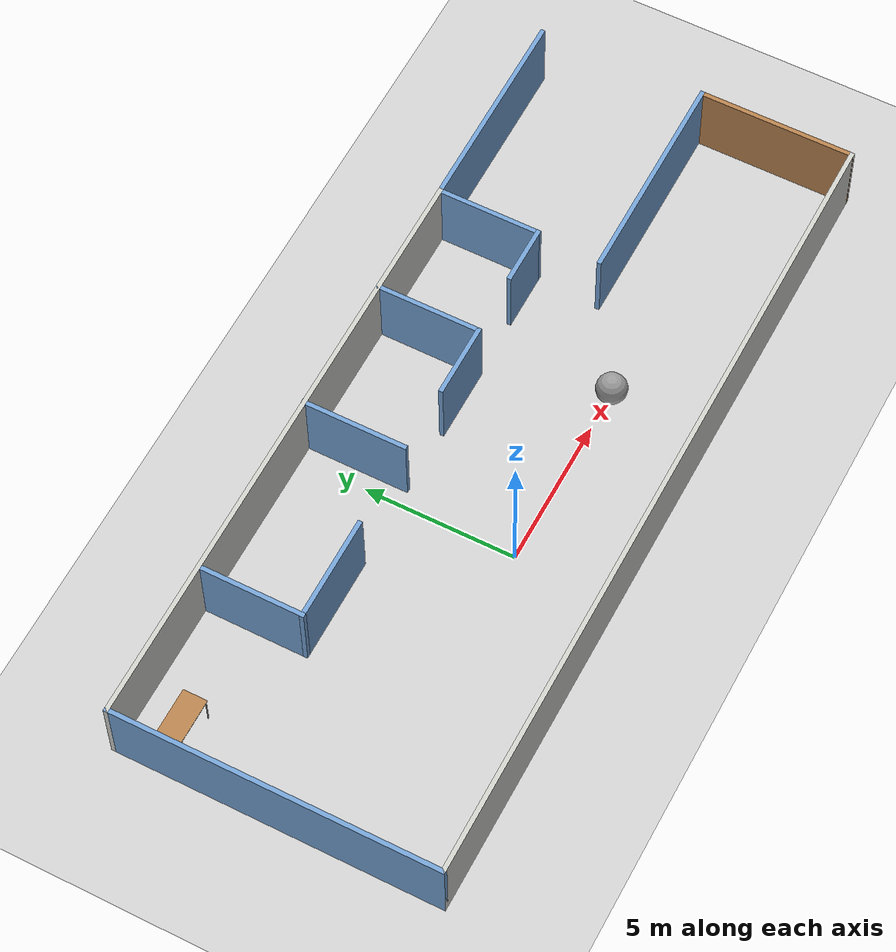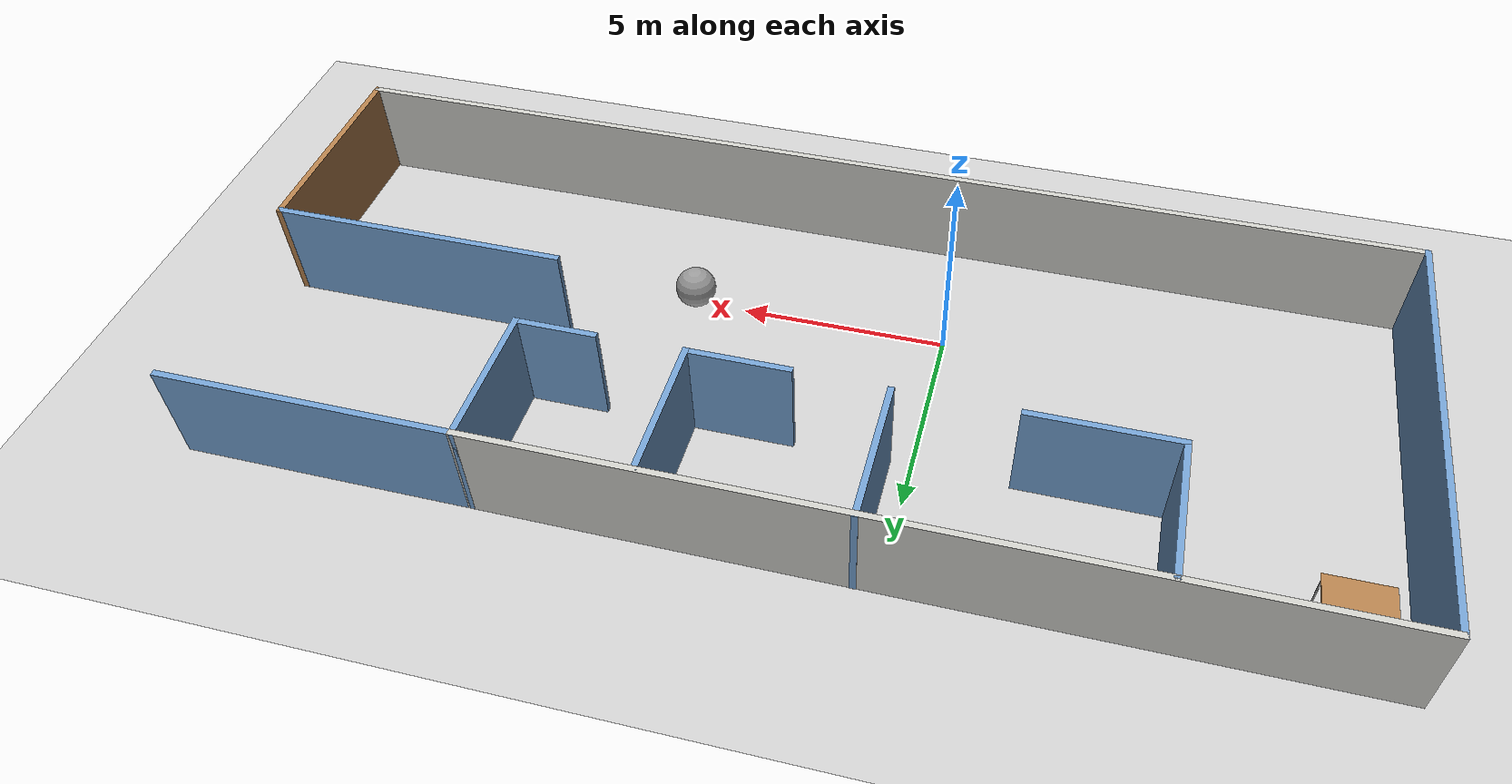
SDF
<sdf version="1.6">
 <world name="default">
  <plugin name="hello" filename="libhello.so"/>
  <light name="sun" type="directional">
   <pose>0 0 10 0 -0 0</pose>
   <diffuse>0.8 0.8 0.8 1</diffuse>
   <specular>0.2 0.2 0.2 1</specular>
   <attenuation>
    <range>1000</range>
    <constant>0.9</constant>
    <linear>0.01</linear>
    <quadratic>0.001</quadratic>
   </attenuation>
   <direction>-0.5 0.1 -0.9</direction>
  </light>
  <model name="ground_plane">
   <static>1</static>
   <link name="link">
    <collision name="collision">
     <geometry><plane><normal>0 0 1</normal><size>100 100</size></plane></geometry>
     <surface>
      <contact><collide_bitmask>65535</collide_bitmask></contact>
      <friction><ode><mu>100</mu><mu2>50</mu2></ode></friction>
     </surface>
    </collision>
    <visual name="visual">
     <cast_shadows>0</cast_shadows>
     <geometry><plane><normal>0 0 1</normal><size>100 100</size></plane></geometry>
     <material>
      <script><uri>file://media/materials/scripts/gazebo.material</uri><name>Gazebo/Grey</name></script>
     </material>
    </visual>
   </link>
  </model>
  <gravity>0 0 -9.8</gravity>
  <magnetic_field>6e-06 2.3e-05 -4.2e-05</magnetic_field>
  <atmosphere type="adiabatic"/>
  <physics name="default_physics" default="0" type="ode">
   <max_step_size>0.001</max_step_size>
   <real_time_factor>1</real_time_factor>
   <real_time_update_rate>1000</real_time_update_rate>
  </physics>
  <scene><ambient>0.4 0.4 0.4 1</ambient><background>0.7 0.7 0.7 1</background><shadows>1</shadows></scene>
  <spherical_coordinates>
   <surface_model>EARTH_WGS84</surface_model>
   <latitude_deg>0</latitude_deg>
   <longitude_deg>0</longitude_deg>
   <elevation>0</elevation>
   <heading_deg>0</heading_deg>
  </spherical_coordinates>
  <audio><device>default</device></audio>
  <model name="building">
   <pose>2.67066 1.97158 0 0 -0 0</pose>
   <link name="Wall_10">
    <collision name="Wall_10_Collision">
     <geometry><box><size>2 0.15 2.5</size></box></geometry>
     <pose>0 0 1.25 0 -0 0</pose>
    </collision>
    <visual name="Wall_10_Visual">
     <pose>0 0 1.25 0 -0 0</pose>
     <geometry><box><size>2 0.15 2.5</size></box></geometry>
     <material>
      <script><uri>file://media/materials/scripts/gazebo.material</uri><name>Gazebo/Grey</name></script>
      <ambient>0.447059 0.623529 0.811765 1</ambient>
     </material>
     <meta><layer>0</layer></meta>
    </visual>
    <pose>5.49986 1.94581 0 0 -0 3.14159</pose>
   </link>
   <link name="Wall_12">
    <collision name="Wall_12_Collision">
     <geometry><box><size>3.5 0.15 2.5</size></box></geometry>
     <pose>0 0 1.25 0 -0 0</pose>
    </collision>
    <visual name="Wall_12_Visual">
     <pose>0 0 1.25 0 -0 0</pose>
     <geometry><box><size>3.5 0.15 2.5</size></box></geometry>
     <material>
      <script><uri>file://media/materials/scripts/gazebo.material</uri><name>Gazebo/Grey</name></script>
      <ambient>0.447059 0.623529 0.811765 1</ambient>
     </material>
     <meta><layer>0</layer></meta>
    </visual>
    <pose>2.4718 3.58334 0 0 -0 -1.5708</pose>
   </link>
   <link name="Wall_14">
    <collision name="Wall_14_Collision">
     <geometry><box><size>2.5 0.15 2.5</size></box></geometry>
     <pose>0 0 1.25 0 -0 0</pose>
    </collision>
    <visual name="Wall_14_Visual">
     <pose>0 0 1.25 0 -0 0</pose>
     <geometry><box><size>2.5 0.15 2.5</size></box></geometry>
     <material>
      <script><uri>file://media/materials/scripts/gazebo.material</uri><name>Gazebo/Grey</name></script>
      <ambient>0.447059 0.623529 0.811765 1</ambient>
     </material>
     <meta><layer>0</layer></meta>
    </visual>
    <pose>1.2968 1.90834 0 0 -0 3.14159</pose>
   </link>
   <link name="Wall_17">
    <collision name="Wall_17_Collision">
     <geometry><box><size>3.5 0.15 2.5</size></box></geometry>
     <pose>0 0 1.25 0 -0 0</pose>
    </collision>
    <visual name="Wall_17_Visual">
     <pose>0 0 1.25 0 -0 0</pose>
     <geometry><box><size>3.5 0.15 2.5</size></box></geometry>
     <material>
      <script><uri>file://media/materials/scripts/gazebo.material</uri><name>Gazebo/Grey</name></script>
      <ambient>0.447059 0.623529 0.811765 1</ambient>
     </material>
     <meta><layer>0</layer></meta>
    </visual>
    <pose>-2.10806 3.6296 0 0 -0 -1.5708</pose>
   </link>
   <link name="Wall_21">
    <collision name="Wall_21_Collision">
     <geometry><box><size>10.75 0.15 2.5</size></box></geometry>
     <pose>0 0 1.25 0 -0 0</pose>
    </collision>
    <visual name="Wall_21_Visual">
     <pose>0 0 1.25 0 -0 0</pose>
     <geometry><box><size>10.75 0.15 2.5</size></box></geometry>
     <material>
      <script><uri>file://media/materials/scripts/gazebo.material</uri><name>Gazebo/Grey</name></script>
      <ambient>0.447059 0.623529 0.811765 1</ambient>
     </material>
     <meta><layer>0</layer></meta>
    </visual>
    <pose>-13.425 -0.004602 0 0 -0 -1.5708</pose>
   </link>
   <link name="Wall_22">
    <collision name="Wall_22_Collision">
     <geometry><box><size>27 0.15 2.5</size></box></geometry>
     <pose>0 0 1.25 0 -0 0</pose>
    </collision>
    <visual name="Wall_22_Visual">
     <pose>0 0 1.25 0 -0 0</pose>
     <geometry><box><size>27 0.15 2.5</size></box></geometry>
     <material>
      <script><uri>file://media/materials/scripts/gazebo.material</uri><name>Gazebo/CeilingTiled</name></script>
      <ambient>0.447059 0.623529 0.811765 1</ambient>
     </material>
     <meta><layer>0</layer></meta>
    </visual>
    <pose>0 -5.3046 0 0 -0 0</pose>
   </link>
   <link name="Wall_23">
    <collision name="Wall_23_Collision">
     <geometry><box><size>5.25 0.15 2.5</size></box></geometry>
     <pose>0 0 1.25 0 -0 0</pose>
    </collision>
    <visual name="Wall_23_Visual">
     <pose>0 0 1.25 0 -0 0</pose>
     <geometry><box><size>5.25 0.15 2.5</size></box></geometry>
     <material>
      <script><uri>file://media/materials/scripts/gazebo.material</uri><name>Gazebo/Wood</name></script>
      <ambient>0.447059 0.623529 0.811765 1</ambient>
     </material>
     <meta><layer>0</layer></meta>
    </visual>
    <pose>13.425 -2.7546 0 0 -0 1.5708</pose>
   </link>
   <link name="Wall_25">
    <collision name="Wall_25_Collision">
     <geometry><box><size>7 0.15 2.5</size></box></geometry>
     <pose>0 0 1.25 0 -0 0</pose>
    </collision>
    <visual name="Wall_25_Visual">
     <pose>0 0 1.25 0 -0 0</pose>
     <geometry><box><size>7 0.15 2.5</size></box></geometry>
     <material>
      <script><uri>file://media/materials/scripts/gazebo.material</uri><name>Gazebo/Grey</name></script>
      <ambient>0.447059 0.623529 0.811765 1</ambient>
     </material>
     <meta><layer>0</layer></meta>
    </visual>
    <pose>9.84985 5.2958 0 0 -0 0</pose>
   </link>
   <link name="Wall_28">
    <collision name="Wall_28_Collision">
     <geometry><box><size>7.25 0.15 2.5</size></box></geometry>
     <pose>0 0 1.25 0 -0 0</pose>
    </collision>
    <visual name="Wall_28_Visual">
     <pose>0 0 1.25 0 -0 0</pose>
     <geometry><box><size>7.25 0.15 2.5</size></box></geometry>
     <material>
      <script><uri>file://media/materials/scripts/gazebo.material</uri><name>Gazebo/Grey</name></script>
      <ambient>0.447059 0.623529 0.811765 1</ambient>
     </material>
     <meta><layer>0</layer></meta>
    </visual>
    <pose>9.875 -0.204602 0 0 -0 3.14159</pose>
   </link>
   <link name="Wall_3">
    <collision name="Wall_3_Collision">
     <geometry><box><size>19.9999 0.15 2.5</size></box></geometry>
     <pose>0 0 1.25 0 -0 0</pose>
    </collision>
    <visual name="Wall_3_Visual">
     <pose>0 0 1.25 0 -0 0</pose>
     <geometry><box><size>19.9999 0.15 2.5</size></box></geometry>
     <material>
      <script><uri>file://media/materials/scripts/gazebo.material</uri><name>Gazebo/CeilingTiled</name></script>
      <ambient>0.447059 0.623529 0.811765 1</ambient>
     </material>
     <meta><layer>0</layer></meta>
    </visual>
    <pose>-3.50007 5.2956 0 0 -0 2e-05</pose>
   </link>
   <link name="Wall_30">
    <collision name="Wall_30_Collision">
     <geometry><box><size>3.5 0.15 2.5</size></box></geometry>
     <pose>0 0 1.25 0 -0 0</pose>
    </collision>
    <visual name="Wall_30_Visual">
     <pose>0 0 1.25 0 -0 0</pose>
     <geometry><box><size>3.5 0.15 2.5</size></box></geometry>
     <material>
      <script><uri>file://media/materials/scripts/gazebo.material</uri><name>Gazebo/Grey</name></script>
      <ambient>0.447059 0.623529 0.811765 1</ambient>
     </material>
     <meta><layer>0</layer></meta>
    </visual>
    <pose>-6.6321 1.90323 0 0 -0 3.14159</pose>
   </link>
   <link name="Wall_31">
    <collision name="Wall_31_Collision">
     <geometry><box><size>3.5 0.15 2.5</size></box></geometry>
     <pose>0 0 1.25 0 -0 0</pose>
    </collision>
    <visual name="Wall_31_Visual">
     <pose>0 0 1.25 0 -0 0</pose>
     <geometry><box><size>3.5 0.15 2.5</size></box></geometry>
     <material>
      <script><uri>file://media/materials/scripts/gazebo.material</uri><name>Gazebo/Grey</name></script>
      <ambient>0.447059 0.623529 0.811765 1</ambient>
     </material>
     <meta><layer>0</layer></meta>
    </visual>
    <pose>-8.3071 3.57823 0 0 -0 1.5708</pose>
   </link>
   <link name="Wall_9">
    <collision name="Wall_9_Collision">
     <geometry><box><size>3.5 0.15 2.5</size></box></geometry>
     <pose>0 0 1.25 0 -0 0</pose>
    </collision>
    <visual name="Wall_9_Visual">
     <pose>0 0 1.25 0 -0 0</pose>
     <geometry><box><size>3.5 0.15 2.5</size></box></geometry>
     <material>
      <script><uri>file://media/materials/scripts/gazebo.material</uri><name>Gazebo/Grey</name></script>
      <ambient>0.447059 0.623529 0.811765 1</ambient>
     </material>
     <meta><layer>0</layer></meta>
    </visual>
    <pose>6.42485 3.6208 0 0 -0 -1.5708</pose>
   </link>
   <static>1</static>
  </model>
  <model name="table">
   <static>1</static>
   <link name="link">
    <collision name="surface">
     <pose>0 0 1 0 -0 0</pose>
     <geometry><box><size>1.5 0.8 0.03</size></box></geometry>
     <surface><friction><ode><mu>0.6</mu><mu2>0.6</mu2></ode></friction></surface>
    </collision>
    <visual name="visual1">
     <pose>0 0 1 0 -0 0</pose>
     <geometry><box><size>1.5 0.8 0.03</size></box></geometry>
     <material>
      <script><uri>file://media/materials/scripts/gazebo.material</uri><name>Gazebo/Wood</name></script>
     </material>
    </visual>
    <collision name="front_left_leg">
     <pose>0.68 0.38 0.5 0 -0 0</pose>
     <geometry><cylinder><radius>0.02</radius><length>1</length></cylinder></geometry>
    </collision>
    <visual name="front_left_leg">
     <pose>0.68 0.38 0.5 0 -0 0</pose>
     <geometry><cylinder><radius>0.02</radius><length>1</length></cylinder></geometry>
     <material>
      <script><uri>file://media/materials/scripts/gazebo.material</uri><name>Gazebo/Grey</name></script>
     </material>
    </visual>
    <collision name="front_right_leg">
     <pose>0.68 -0.38 0.5 0 -0 0</pose>
     <geometry><cylinder><radius>0.02</radius><length>1</length></cylinder></geometry>
    </collision>
    <visual name="front_right_leg">
     <pose>0.68 -0.38 0.5 0 -0 0</pose>
     <geometry><cylinder><radius>0.02</radius><length>1</length></cylinder></geometry>
     <material>
      <script><uri>file://media/materials/scripts/gazebo.material</uri><name>Gazebo/Grey</name></script>
     </material>
    </visual>
    <collision name="back_right_leg">
     <pose>-0.68 -0.38 0.5 0 -0 0</pose>
     <geometry><cylinder><radius>0.02</radius><length>1</length></cylinder></geometry>
    </collision>
    <visual name="back_right_leg">
     <pose>-0.68 -0.38 0.5 0 -0 0</pose>
     <geometry><cylinder><radius>0.02</radius><length>1</length></cylinder></geometry>
     <material>
      <script><uri>file://media/materials/scripts/gazebo.material</uri><name>Gazebo/Grey</name></script>
     </material>
    </visual>
    <collision name="back_left_leg">
     <pose>-0.68 0.38 0.5 0 -0 0</pose>
     <geometry><cylinder><radius>0.02</radius><length>1</length></cylinder></geometry>
    </collision>
    <visual name="back_left_leg">
     <pose>-0.68 0.38 0.5 0 -0 0</pose>
     <geometry><cylinder><radius>0.02</radius><length>1</length></cylinder></geometry>
     <material>
      <script><uri>file://media/materials/scripts/gazebo.material</uri><name>Gazebo/Grey</name></script>
     </material>
    </visual>
   </link>
   <pose>-9.38374 5.76561 0 0 -0 0</pose>
  </model>
  <model name="my_ball">
   <link name="link_0">
    <inertial>
     <mass>1</mass>
     <inertia><ixx>0.1</ixx><ixy>0</ixy><ixz>0</ixz><iyy>0.1</iyy><iyz>0</iyz><izz>0.1</izz></inertia>
    </inertial>
    <visual name="visual">
     <geometry><sphere><radius>0.5</radius></sphere></geometry>
     <material>
      <lighting>1</lighting>
      <script><uri>file://media/materials/scripts/gazebo.material</uri><name>Gazebo/Grey</name></script>
      <ambient>1 1 1 1</ambient>
      <shader type="vertex"><normal_map>__default__</normal_map></shader>
      <diffuse>1 1 1 1</diffuse>
      <specular>1 1 1 1</specular>
      <emissive>1 1 1 1</emissive>
     </material>
    </visual>
    <collision name="collision">
     <geometry><sphere><radius>0.5</radius></sphere></geometry>
     <surface>
      <friction>
       <ode><mu>1</mu><mu2>1</mu2><fdir1>0 0 0</fdir1><slip1>0</slip1><slip2>0</slip2></ode>
       <torsional>
        <coefficient>1</coefficient>
        <patch_radius>0</patch_radius>
        <surface_radius>0</surface_radius>
        <use_patch_radius>1</use_patch_radius>
        <ode><slip>0</slip></ode>
       </torsional>
      </friction>
      <bounce><restitution_coefficient>0</restitution_coefficient><threshold>1e+06</threshold></bounce>
      <contact>
       <collide_without_contact>0</collide_without_contact>
       <collide_without_contact_bitmask>1</collide_without_contact_bitmask>
       <collide_bitmask>1</collide_bitmask>
       <ode>
        <soft_cfm>0</soft_cfm>
        <soft_erp>0.2</soft_erp>
        <kp>1e+13</kp>
        <kd>1</kd>
        <max_vel>0.01</max_vel>
        <min_depth>0</min_depth>
       </ode>
       <bullet>
        <split_impulse>1</split_impulse>
        <split_impulse_penetration_threshold>-0.01</split_impulse_penetration_threshold>
        <soft_cfm>0</soft_cfm>
        <soft_erp>0.2</soft_erp>
        <kp>1e+13</kp>
        <kd>1</kd>
       </bullet>
      </contact>
     </surface>
    </collision>
   </link>
   <static>0</static>
   <pose>6.27707 -0.040312 0.5 0 -0 0</pose>
  </model>
  <plugin filename="libcollision_map_creator.so" name="collision_map_creator"/>
 </world>
</sdf>
